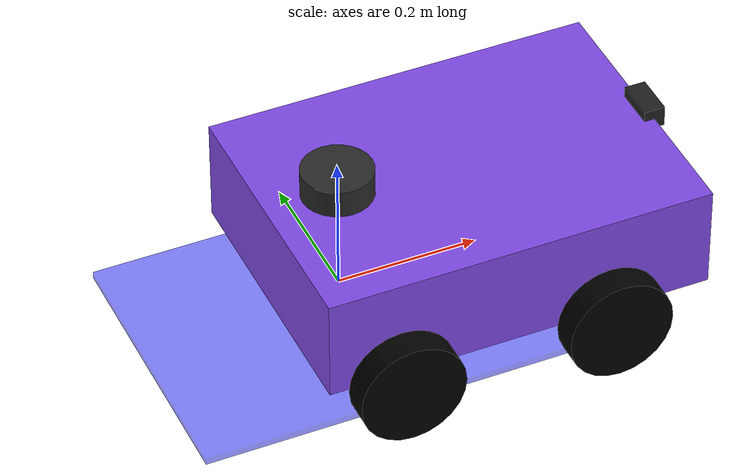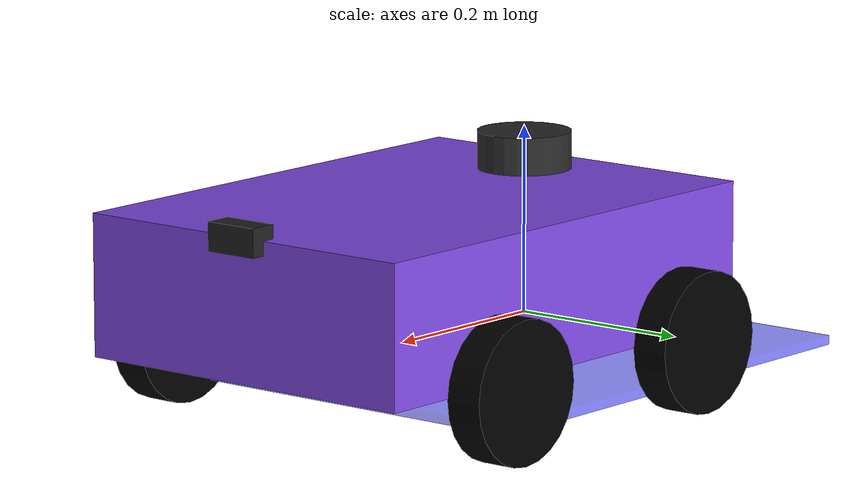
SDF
<sdf version='1.11'>
  <model name='diff_drive_robot'>
    <link name='base_link'>
      <inertial>
        <pose>0.18765432098765439 0 0.069753086419753099 0 0 0</pose>
        <mass>0.80999999999999994</mass>
        <inertia>
          <ixx>0.020275617283950619</ixx>
          <ixy>0</ixy>
          <ixz>0.003364969135802471</ixz>
          <iyy>0.02315449366571997</iyy>
          <iyz>5.3918941048656562e-20</iyz>
          <izz>0.036646543371317043</izz>
        </inertia>
      </inertial>
      <collision name='base_link_fixed_joint_lump__base_footprint_collision'>
        <pose>0 0 -0.050000000000000003 0 0 0</pose>
        <geometry>
          <box>
            <size>0.55000000000000004 0.40000000000000002 0.01</size>
          </box>
        </geometry>
      </collision>
      <collision name='base_link_fixed_joint_lump__camera_link_collision_1'>
        <pose>0.45000000000000001 0 0.14999999999999999 0 0 0</pose>
        <geometry>
          <box>
            <size>0.029999999999999999 0.059999999999999998 0.029999999999999999</size>
          </box>
        </geometry>
        <surface>
          <contact>
            <ode/>
          </contact>
          <friction>
            <ode/>
          </friction>
        </surface>
      </collision>
      <collision name='base_link_fixed_joint_lump__chassis_collision_2'>
        <pose>0.17499999999999999 0 0.074999999999999997 0 0 0</pose>
        <geometry>
          <box>
            <size>0.55000000000000004 0.34000000000000002 0.14999999999999999</size>
          </box>
        </geometry>
        <surface>
          <contact>
            <ode/>
          </contact>
          <friction>
            <ode>
              <mu>1</mu>
              <mu2>1</mu2>
            </ode>
          </friction>
        </surface>
      </collision>
      <collision name='base_link_fixed_joint_lump__laser_frame_collision_3'>
        <pose>0 0 0.17499999999999999 0 0 0</pose>
        <geometry>
          <cylinder>
            <length>0.040000000000000001</length>
            <radius>0.050000000000000003</radius>
          </cylinder>
        </geometry>
        <surface>
          <contact>
            <ode/>
          </contact>
          <friction>
            <ode/>
          </friction>
        </surface>
      </collision>
      <collision name='base_link_fixed_joint_lump__left_front_wheel_collision_4'>
        <pose>0.29999999999999999 0.22500000000000001 0 -1.5700000000000001 0 0</pose>
        <geometry>
          <cylinder>
            <length>0.040000000000000001</length>
            <radius>0.074999999999999997</radius>
          </cylinder>
        </geometry>
        <surface>
          <contact>
            <ode/>
          </contact>
          <friction>
            <ode>
              <mu>9.9999999999999995e-07</mu>
              <mu2>9.9999999999999995e-07</mu2>
            </ode>
          </friction>
        </surface>
      </collision>
      <collision name='base_link_fixed_joint_lump__right_front_wheel_collision_5'>
        <pose>0.29999999999999999 -0.22500000000000001 0 1.5700000000000001 0 0</pose>
        <geometry>
          <cylinder>
            <length>0.040000000000000001</length>
            <radius>0.074999999999999997</radius>
          </cylinder>
        </geometry>
        <surface>
          <contact>
            <ode/>
          </contact>
          <friction>
            <ode>
              <mu>9.9999999999999995e-07</mu>
              <mu2>9.9999999999999995e-07</mu2>
            </ode>
          </friction>
        </surface>
      </collision>
      <visual name='base_link_fixed_joint_lump__base_footprint_visual'>
        <pose>0 0 -0.050000000000000003 0 0 0</pose>
        <geometry>
          <box>
            <size>0.55000000000000004 0.40000000000000002 0.01</size>
          </box>
        </geometry>
        <material>
          <diffuse>0 0 1 0.5</diffuse>
          <ambient>0 0 1 0.5</ambient>
        </material>
      </visual>
      <visual name='base_link_fixed_joint_lump__camera_link_visual_1'>
        <pose>0.45000000000000001 0 0.14999999999999999 0 0 0</pose>
        <geometry>
          <box>
            <size>0.029999999999999999 0.059999999999999998 0.029999999999999999</size>
          </box>
        </geometry>
        <material>
          <diffuse>0.125 0.125 0.125 1</diffuse>
          <ambient>0.125 0.125 0.125 1</ambient>
        </material>
      </visual>
      <visual name='base_link_fixed_joint_lump__chassis_visual_2'>
        <pose>0.17499999999999999 0 0.074999999999999997 0 0 0</pose>
        <geometry>
          <box>
            <size>0.55000000000000004 0.40000000000000002 0.14999999999999999</size>
          </box>
        </geometry>
        <material>
          <diffuse>0.5 0.287499994 0.900000036 1</diffuse>
          <ambient>0.5 0.287499994 0.900000036 1</ambient>
        </material>
      </visual>
      <visual name='base_link_fixed_joint_lump__laser_frame_visual_3'>
        <pose>0 0 0.17499999999999999 0 0 0</pose>
        <geometry>
          <cylinder>
            <length>0.040000000000000001</length>
            <radius>0.050000000000000003</radius>
          </cylinder>
        </geometry>
        <material>
          <diffuse>0.162499994 0.162499994 0.162499994 1</diffuse>
          <ambient>0.162499994 0.162499994 0.162499994 1</ambient>
        </material>
      </visual>
      <visual name='base_link_fixed_joint_lump__left_front_wheel_visual_4'>
        <pose>0.29999999999999999 0.22500000000000001 0 -1.5700000000000001 0 0</pose>
        <geometry>
          <cylinder>
            <length>0.040000000000000001</length>
            <radius>0.074999999999999997</radius>
          </cylinder>
        </geometry>
        <material>
          <diffuse>0 0 0 1</diffuse>
          <ambient>0 0 0 1</ambient>
        </material>
      </visual>
      <visual name='base_link_fixed_joint_lump__right_front_wheel_visual_5'>
        <pose>0.29999999999999999 -0.22500000000000001 0 1.5700000000000001 0 0</pose>
        <geometry>
          <cylinder>
            <length>0.040000000000000001</length>
            <radius>0.074999999999999997</radius>
          </cylinder>
        </geometry>
        <material>
          <diffuse>0 0 0 1</diffuse>
          <ambient>0 0 0 1</ambient>
        </material>
      </visual>
      <sensor name='camera' type='camera'>
        <always_on>true</always_on>
        <update_rate>30</update_rate>
        <topic>camera/image_raw</topic>
        <camera>
          <horizontal_fov>1.0469999999999999</horizontal_fov>
          <image>
            <width>640</width>
            <height>480</height>
            <format>R8G8B8</format>
          </image>
          <clip>
            <near>0.050000000000000003</near>
            <far>8</far>
          </clip>
          <noise>
            <type>gaussian</type>
            <mean>0</mean>
            <stddev>0.0070000000000000001</stddev>
          </noise>
        </camera>
        <pose>0.45000000000000001 0 0.14999999999999999 0 0 0</pose>
        <gz_frame_id>camera_optical_frame</gz_frame_id>
      </sensor>
      <sensor name='laser' type='gpu_lidar'>
        <always_on>true</always_on>
        <visualize>true</visualize>
        <update_rate>10</update_rate>
        <topic>/scan</topic>
        <lidar>
          <scan>
            <horizontal>
              <samples>360</samples>
              <min_angle>-3.1400000000000001</min_angle>
              <max_angle>3.1400000000000001</max_angle>
              <resolution>1</resolution>
            </horizontal>
          </scan>
          <range>
            <min>0.29999999999999999</min>
            <max>12</max>
          </range>
        </lidar>
        <pose>0 0 0.17499999999999999 0 0 0</pose>
        <gz_frame_id>laser_frame</gz_frame_id>
      </sensor>
    </link>
    <joint name='left_wheel_joint' type='revolute'>
      <pose relative_to='base_link'>0 0.22500000000000001 0 -1.5700000000000001 0 0</pose>
      <parent>base_link</parent>
      <child>left_wheel</child>
      <axis>
        <xyz>0 0 1</xyz>
        <limit>
          <lower>-inf</lower>
          <upper>inf</upper>
        </limit>
        <dynamics>
          <spring_reference>0</spring_reference>
          <spring_stiffness>0</spring_stiffness>
        </dynamics>
      </axis>
    </joint>
    <link name='left_wheel'>
      <pose relative_to='left_wheel_joint'>0 0 0 0 0 0</pose>
      <inertial>
        <pose>0 0 0 0 0 0</pose>
        <mass>0.10000000000000001</mass>
        <inertia>
          <ixx>0.00015395833333333331</ixx>
          <ixy>0</ixy>
          <ixz>0</ixz>
          <iyy>0.00015395833333333331</iyy>
          <iyz>0</iyz>
          <izz>0.00028124999999999998</izz>
        </inertia>
      </inertial>
      <collision name='left_wheel_collision'>
        <pose>0 0 0 0 0 0</pose>
        <geometry>
          <cylinder>
            <length>0.040000000000000001</length>
            <radius>0.074999999999999997</radius>
          </cylinder>
        </geometry>
        <surface>
          <contact>
            <ode/>
          </contact>
          <friction>
            <ode>
              <mu>1</mu>
              <mu2>1</mu2>
            </ode>
          </friction>
        </surface>
      </collision>
      <visual name='left_wheel_visual'>
        <pose>0 0 0 0 0 0</pose>
        <geometry>
          <cylinder>
            <length>0.040000000000000001</length>
            <radius>0.074999999999999997</radius>
          </cylinder>
        </geometry>
        <material>
          <diffuse>0 0 0 1</diffuse>
          <ambient>0 0 0 1</ambient>
        </material>
      </visual>
    </link>
    <joint name='right_wheel_joint' type='revolute'>
      <pose relative_to='base_link'>0 -0.22500000000000001 0 1.5700000000000001 0 0</pose>
      <parent>base_link</parent>
      <child>right_wheel</child>
      <axis>
        <xyz>0 0 -1</xyz>
        <limit>
          <lower>-inf</lower>
          <upper>inf</upper>
        </limit>
        <dynamics>
          <spring_reference>0</spring_reference>
          <spring_stiffness>0</spring_stiffness>
        </dynamics>
      </axis>
    </joint>
    <link name='right_wheel'>
      <pose relative_to='right_wheel_joint'>0 0 0 0 0 0</pose>
      <inertial>
        <pose>0 0 0 0 0 0</pose>
        <mass>0.10000000000000001</mass>
        <inertia>
          <ixx>0.00015395833333333331</ixx>
          <ixy>0</ixy>
          <ixz>0</ixz>
          <iyy>0.00015395833333333331</iyy>
          <iyz>0</iyz>
          <izz>0.00028124999999999998</izz>
        </inertia>
      </inertial>
      <collision name='right_wheel_collision'>
        <pose>0 0 0 0 0 0</pose>
        <geometry>
          <cylinder>
            <length>0.040000000000000001</length>
            <radius>0.074999999999999997</radius>
          </cylinder>
        </geometry>
        <surface>
          <contact>
            <ode/>
          </contact>
          <friction>
            <ode>
              <mu>1</mu>
              <mu2>1</mu2>
            </ode>
          </friction>
        </surface>
      </collision>
      <visual name='right_wheel_visual'>
        <pose>0 0 0 0 0 0</pose>
        <geometry>
          <cylinder>
            <length>0.040000000000000001</length>
            <radius>0.074999999999999997</radius>
          </cylinder>
        </geometry>
        <material>
          <diffuse>0 0 0 1</diffuse>
          <ambient>0 0 0 1</ambient>
        </material>
      </visual>
    </link>
    <plugin name='gz::sim::systems::DiffDrive' filename='libgz-sim-diff-drive-system'>
      <left_joint>left_wheel_joint</left_joint>
      <right_joint>right_wheel_joint</right_joint>
      <wheel_separation>0.45</wheel_separation>
      <wheel_radius>0.075</wheel_radius>
      <odom_publish_frequency>50</odom_publish_frequency>
      <topic>cmd_vel</topic>
      <wheel_acceleration>1.0</wheel_acceleration>
      <wheel_torque>10.0</wheel_torque>
      <max_linear_speed>2.0</max_linear_speed>
      <max_angular_speed>3.14</max_angular_speed>
      <odom_topic>model/diff_drive_robot/odometry</odom_topic>
      <frame_id>odom</frame_id>
      <child_frame_id>base_link</child_frame_id>
      <debug>true</debug>
      <debug_topic>drive_debug</debug_topic>
    </plugin>
    <plugin name='gz::sim::systems::JointStatePublisher' filename='gz-sim-joint-state-publisher-system'>
      <topic>joint_states</topic>
      <joint_name>right_wheel_joint</joint_name>
      <joint_name>left_wheel_joint</joint_name>
      <joint_name>left_front_wheel_joint</joint_name>
      <joint_name>right_front_wheel_joint</joint_name>
    </plugin>
    <frame name='base_footprint_joint' attached_to='base_link'>
      <pose>0 0 -0.050000000000000003 0 0 0</pose>
    </frame>
    <frame name='base_footprint' attached_to='base_footprint_joint'>
      <pose>0 0 0 0 0 0</pose>
    </frame>
    <frame name='camera_optical_joint' attached_to='camera_link'>
      <pose>0 0 0 -1.5708 -5.5511151231257827e-17 -1.5708</pose>
    </frame>
    <frame name='camera_optical_frame' attached_to='camera_optical_joint'>
      <pose>0 0 0 0 0 0</pose>
    </frame>
    <frame name='camera_joint' attached_to='base_link'>
      <pose>0.45000000000000001 0 0.14999999999999999 0 0 0</pose>
    </frame>
    <frame name='camera_link' attached_to='camera_joint'>
      <pose>0 0 0 0 0 0</pose>
    </frame>
    <frame name='laser_joint' attached_to='chassis'>
      <pose>0.10000000000000001 0 0.17499999999999999 0 0 0</pose>
    </frame>
    <frame name='laser_frame' attached_to='laser_joint'>
      <pose>0 0 0 0 0 0</pose>
    </frame>
    <frame name='chassis_joint' attached_to='base_link'>
      <pose>-0.10000000000000001 0 0 0 0 0</pose>
    </frame>
    <frame name='chassis' attached_to='chassis_joint'>
      <pose>0 0 0 0 0 0</pose>
    </frame>
    <frame name='left_front_wheel_joint' attached_to='base_link'>
      <pose>0.29999999999999999 0.22500000000000001 0 -1.5700000000000001 0 0</pose>
    </frame>
    <frame name='left_front_wheel' attached_to='left_front_wheel_joint'>
      <pose>0 0 0 0 0 0</pose>
    </frame>
    <frame name='right_front_wheel_joint' attached_to='base_link'>
      <pose>0.29999999999999999 -0.22500000000000001 0 1.5700000000000001 0 0</pose>
    </frame>
    <frame name='right_front_wheel' attached_to='right_front_wheel_joint'>
      <pose>0 0 0 0 0 0</pose>
    </frame>
  </model>
</sdf>
